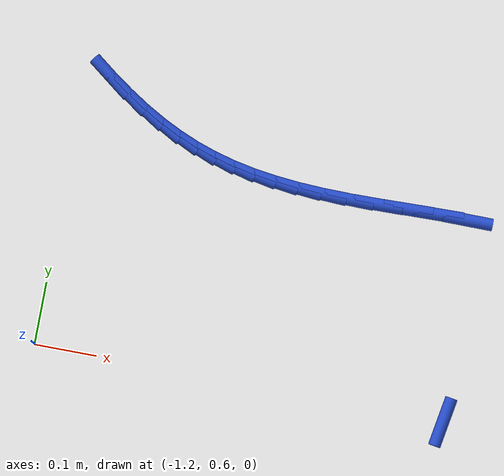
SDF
<sdf version="1.6">
 <world name="default">
  <model name="ground_plane">
   <static>1</static>
   <link name="link">
    <collision name="collision">
     <geometry><plane><normal>0 0 1</normal><size>100 100</size></plane></geometry>
     <surface><friction><ode><mu>100</mu><mu2>50</mu2></ode></friction></surface>
    </collision>
    <visual name="visual">
     <cast_shadows>0</cast_shadows>
     <geometry><plane><normal>0 0 1</normal><size>100 100</size></plane></geometry>
     <material>
      <script><uri>file://media/materials/scripts/gazebo.material</uri><name>Gazebo/WhiteGlow</name></script>
     </material>
    </visual>
   </link>
  </model>
  <model name="line">
   <link name="link_23">
    <pose>-0.5411457358052435 0.599294953106899 0.01 0 1.57 1.4061506158606747</pose>
    <collision name="collision">
     <geometry><cylinder><radius>0.01</radius><length>0.08</length></cylinder></geometry>
    </collision>
    <visual name="visual">
     <material>
      <script><name>Gazebo/Blue</name><uri>file://media/materials/scripts/gazebo.material</uri></script>
     </material>
     <geometry><cylinder><radius>0.01</radius><length>0.08</length></cylinder></geometry>
    </visual>
   </link>
   <link name="link_36">
    <pose>-0.5609944382204414 0.9218703854635124 0.01 0 1.57 -0.004234511711053627</pose>
    <collision name="collision">
     <geometry><cylinder><radius>0.01</radius><length>0.08</length></cylinder></geometry>
    </collision>
    <visual name="visual">
     <material>
      <script><name>Gazebo/Blue</name><uri>file://media/materials/scripts/gazebo.material</uri></script>
     </material>
     <geometry><cylinder><radius>0.01</radius><length>0.08</length></cylinder></geometry>
    </visual>
   </link>
   <link name="link_37">
    <pose>-0.608321360914488 0.9220707930697521 0.01 0 1.57 0.020359173103185222</pose>
    <collision name="collision">
     <geometry><cylinder><radius>0.01</radius><length>0.08</length></cylinder></geometry>
    </collision>
    <visual name="visual">
     <material>
      <script><name>Gazebo/Blue</name><uri>file://media/materials/scripts/gazebo.material</uri></script>
     </material>
     <geometry><cylinder><radius>0.01</radius><length>0.08</length></cylinder></geometry>
    </visual>
   </link>
   <link name="link_38">
    <pose>-0.6573765634995669 0.9210719316969059 0.01 0 1.57 0.026245546910395066</pose>
    <collision name="collision">
     <geometry><cylinder><radius>0.01</radius><length>0.08</length></cylinder></geometry>
    </collision>
    <visual name="visual">
     <material>
      <script><name>Gazebo/Blue</name><uri>file://media/materials/scripts/gazebo.material</uri></script>
     </material>
     <geometry><cylinder><radius>0.01</radius><length>0.08</length></cylinder></geometry>
    </visual>
   </link>
   <link name="link_39">
    <pose>-0.7061930418974912 0.9197904222627599 0.01 0 1.57 0.014050279449397173</pose>
    <collision name="collision">
     <geometry><cylinder><radius>0.01</radius><length>0.08</length></cylinder></geometry>
    </collision>
    <visual name="visual">
     <material>
      <script><name>Gazebo/Blue</name><uri>file://media/materials/scripts/gazebo.material</uri></script>
     </material>
     <geometry><cylinder><radius>0.01</radius><length>0.08</length></cylinder></geometry>
    </visual>
   </link>
   <link name="link_40">
    <pose>-0.7528262154007621 0.9191351700250008 0.01 0 1.57 -0.012772914286360453</pose>
    <collision name="collision">
     <geometry><cylinder><radius>0.01</radius><length>0.08</length></cylinder></geometry>
    </collision>
    <visual name="visual">
     <material>
      <script><name>Gazebo/Blue</name><uri>file://media/materials/scripts/gazebo.material</uri></script>
     </material>
     <geometry><cylinder><radius>0.01</radius><length>0.08</length></cylinder></geometry>
    </visual>
   </link>
   <link name="link_41">
    <pose>-0.7962757413168073 0.9196901772782899 0.01 0 1.57 -0.047137525106969745</pose>
    <collision name="collision">
     <geometry><cylinder><radius>0.01</radius><length>0.08</length></cylinder></geometry>
    </collision>
    <visual name="visual">
     <material>
      <script><name>Gazebo/Blue</name><uri>file://media/materials/scripts/gazebo.material</uri></script>
     </material>
     <geometry><cylinder><radius>0.01</radius><length>0.08</length></cylinder></geometry>
    </visual>
   </link>
   <link name="link_42">
    <pose>-0.8368115665795276 0.9216023522191709 0.01 0 1.57 -0.08889991266092817</pose>
    <collision name="collision">
     <geometry><cylinder><radius>0.01</radius><length>0.08</length></cylinder></geometry>
    </collision>
    <visual name="visual">
     <material>
      <script><name>Gazebo/Blue</name><uri>file://media/materials/scripts/gazebo.material</uri></script>
     </material>
     <geometry><cylinder><radius>0.01</radius><length>0.08</length></cylinder></geometry>
    </visual>
   </link>
   <link name="link_43">
    <pose>-0.8747930757015474 0.9249878284578296 0.01 0 1.57 -0.13813084462011865</pose>
    <collision name="collision">
     <geometry><cylinder><radius>0.01</radius><length>0.08</length></cylinder></geometry>
    </collision>
    <visual name="visual">
     <material>
      <script><name>Gazebo/Blue</name><uri>file://media/materials/scripts/gazebo.material</uri></script>
     </material>
     <geometry><cylinder><radius>0.01</radius><length>0.08</length></cylinder></geometry>
    </visual>
   </link>
   <link name="link_44">
    <pose>-0.9105796531954921 0.9299627396044517 0.01 0 1.57 -0.19428603893547208</pose>
    <collision name="collision">
     <geometry><cylinder><radius>0.01</radius><length>0.08</length></cylinder></geometry>
    </collision>
    <visual name="visual">
     <material>
      <script><name>Gazebo/Blue</name><uri>file://media/materials/scripts/gazebo.material</uri></script>
     </material>
     <geometry><cylinder><radius>0.01</radius><length>0.08</length></cylinder></geometry>
    </visual>
   </link>
   <link name="link_45">
    <pose>-0.9445306835739862 0.9366432192692229 0.01 0 1.57 -0.2560608761660366</pose>
    <collision name="collision">
     <geometry><cylinder><radius>0.01</radius><length>0.08</length></cylinder></geometry>
    </collision>
    <visual name="visual">
     <material>
      <script><name>Gazebo/Blue</name><uri>file://media/materials/scripts/gazebo.material</uri></script>
     </material>
     <geometry><cylinder><radius>0.01</radius><length>0.08</length></cylinder></geometry>
    </visual>
   </link>
   <link name="link_46">
    <pose>-0.9770055513496545 0.9451454010623285 0.01 0 1.57 -0.3213866128710143</pose>
    <collision name="collision">
     <geometry><cylinder><radius>0.01</radius><length>0.08</length></cylinder></geometry>
    </collision>
    <visual name="visual">
     <material>
      <script><name>Gazebo/Blue</name><uri>file://media/materials/scripts/gazebo.material</uri></script>
     </material>
     <geometry><cylinder><radius>0.01</radius><length>0.08</length></cylinder></geometry>
    </visual>
   </link>
   <link name="link_47">
    <pose>-1.0083636410351224 0.9555854185939544 0.01 0 1.57 -0.387633240103913</pose>
    <collision name="collision">
     <geometry><cylinder><radius>0.01</radius><length>0.08</length></cylinder></geometry>
    </collision>
    <visual name="visual">
     <material>
      <script><name>Gazebo/Blue</name><uri>file://media/materials/scripts/gazebo.material</uri></script>
     </material>
     <geometry><cylinder><radius>0.01</radius><length>0.08</length></cylinder></geometry>
    </visual>
   </link>
   <link name="link_48">
    <pose>-1.0389643371430144 0.9680794054742863 0.01 0 1.57 -0.4519988271493742</pose>
    <collision name="collision">
     <geometry><cylinder><radius>0.01</radius><length>0.08</length></cylinder></geometry>
    </collision>
    <visual name="visual">
     <material>
      <script><name>Gazebo/Blue</name><uri>file://media/materials/scripts/gazebo.material</uri></script>
     </material>
     <geometry><cylinder><radius>0.01</radius><length>0.08</length></cylinder></geometry>
    </visual>
   </link>
   <link name="link_49">
    <pose>-1.0691670241859557 0.9827434953135099 0.01 0 1.57 -0.5119622731397211</pose>
    <collision name="collision">
     <geometry><cylinder><radius>0.01</radius><length>0.08</length></cylinder></geometry>
    </collision>
    <visual name="visual">
     <material>
      <script><name>Gazebo/Blue</name><uri>file://media/materials/scripts/gazebo.material</uri></script>
     </material>
     <geometry><cylinder><radius>0.01</radius><length>0.08</length></cylinder></geometry>
    </visual>
   </link>
   <link name="link_50">
    <pose>-1.099331086676571 0.9996938217218105 0.01 0 1.57 -0.5656372625766881</pose>
    <collision name="collision">
     <geometry><cylinder><radius>0.01</radius><length>0.08</length></cylinder></geometry>
    </collision>
    <visual name="visual">
     <material>
      <script><name>Gazebo/Blue</name><uri>file://media/materials/scripts/gazebo.material</uri></script>
     </material>
     <geometry><cylinder><radius>0.01</radius><length>0.08</length></cylinder></geometry>
    </visual>
   </link>
   <link name="link_51">
    <pose>-1.1298159091274855 1.0190465183093742 0.01 0 1.57 -0.6119249689035744</pose>
    <collision name="collision">
     <geometry><cylinder><radius>0.01</radius><length>0.08</length></cylinder></geometry>
    </collision>
    <visual name="visual">
     <material>
      <script><name>Gazebo/Blue</name><uri>file://media/materials/scripts/gazebo.material</uri></script>
     </material>
     <geometry><cylinder><radius>0.01</radius><length>0.08</length></cylinder></geometry>
    </visual>
   </link>
   <link name="link_52">
    <pose>-1.160980876051324 1.0409177186863865 0.01 0 1.57 -0.6504689448025031</pose>
    <collision name="collision">
     <geometry><cylinder><radius>0.01</radius><length>0.08</length></cylinder></geometry>
    </collision>
    <visual name="visual">
     <material>
      <script><name>Gazebo/Blue</name><uri>file://media/materials/scripts/gazebo.material</uri></script>
     </material>
     <geometry><cylinder><radius>0.01</radius><length>0.08</length></cylinder></geometry>
    </visual>
   </link>
  </model>
 </world>
</sdf>
